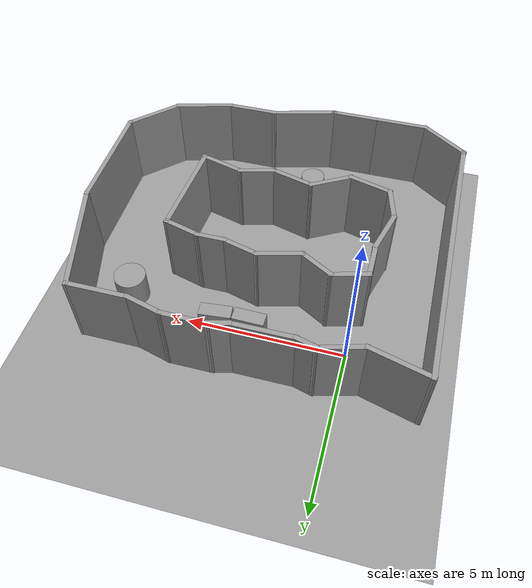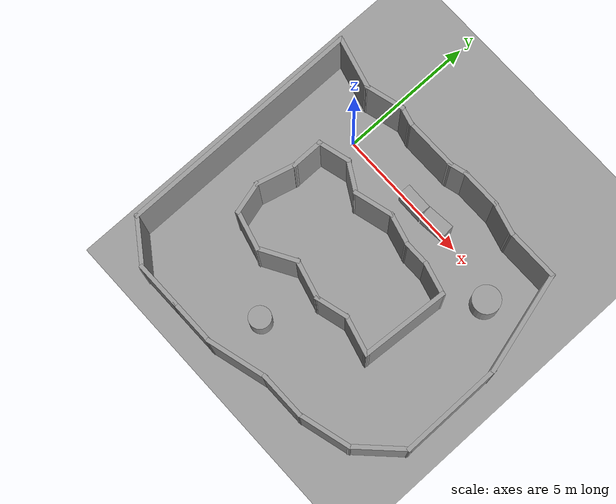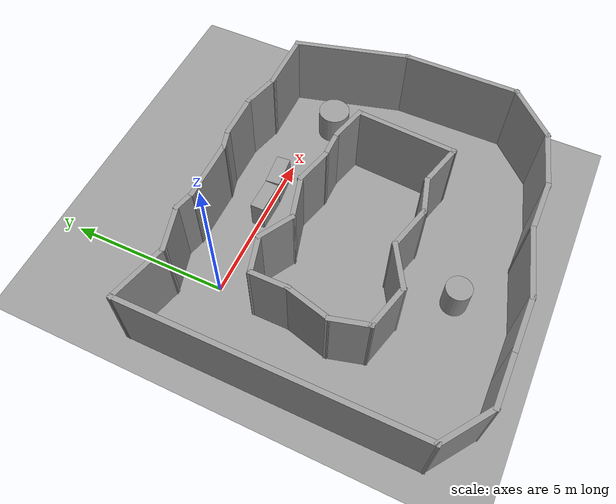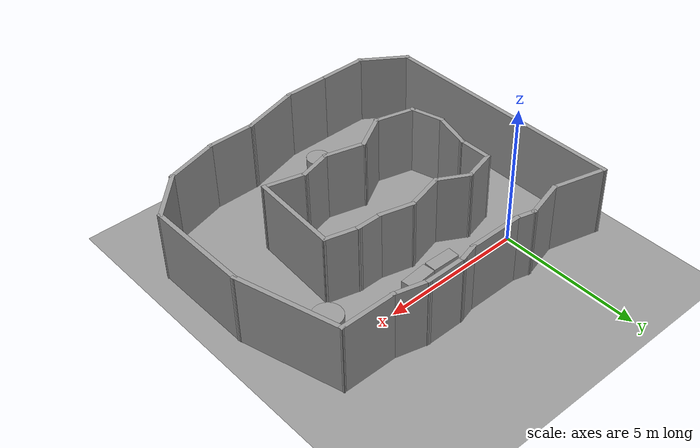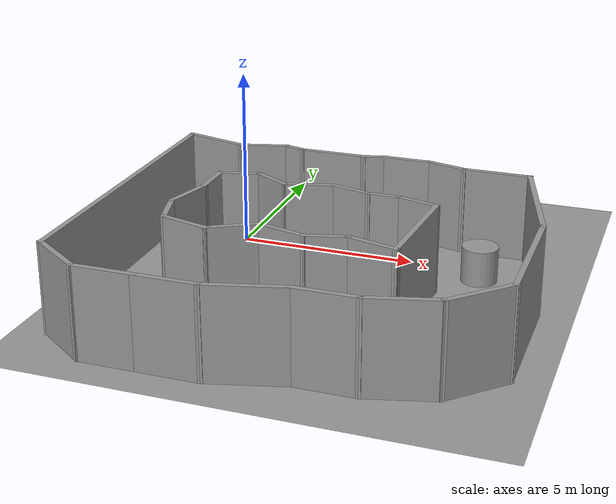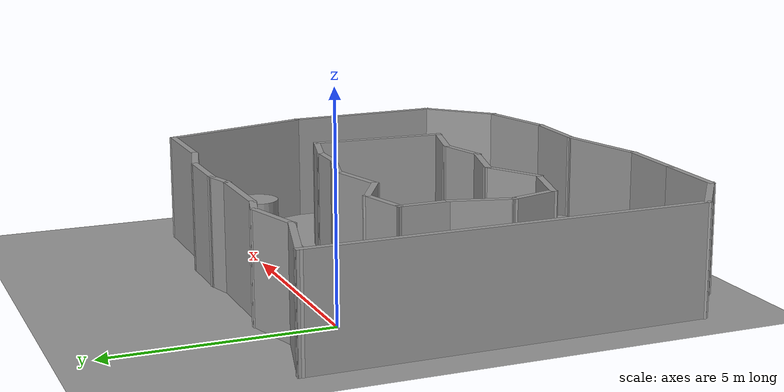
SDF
<sdf version="1.6">
 <world name="default">
  <light name="sun" type="directional">
   <pose>0 0 10 0 -0 0</pose>
   <diffuse>0.8 0.8 0.8 1</diffuse>
   <specular>0.2 0.2 0.2 1</specular>
   <attenuation>
    <range>1000</range>
    <constant>0.9</constant>
    <linear>0.01</linear>
    <quadratic>0.001</quadratic>
   </attenuation>
   <direction>0.5 0.1 -0.9</direction>
  </light>
  <scene><ambient>0.4 0.4 0.4 1</ambient><background>0.7 0.7 0.7 1</background><shadows>1</shadows></scene>
  <physics name="default_physics" default="0" type="ode">
   <max_step_size>0.01</max_step_size>
   <real_time_factor>1</real_time_factor>
   <real_time_update_rate>100</real_time_update_rate>
  </physics>
  <model name="ground_plane_0">
   <static>1</static>
   <link name="link">
    <collision name="collision">
     <geometry><plane><normal>0 0 1</normal><size>100 100</size></plane></geometry>
     <surface><friction><ode><mu>100</mu><mu2>50</mu2></ode></friction></surface>
    </collision>
    <visual name="visual">
     <cast_shadows>0</cast_shadows>
     <geometry><plane><normal>0 0 1</normal><size>100 100</size></plane></geometry>
     <material>
      <script><uri>file://media/materials/scripts/gazebo.material</uri><name>Gazebo/Grey</name></script>
     </material>
    </visual>
    <velocity_decay><linear>0</linear><angular>0</angular></velocity_decay>
   </link>
   <pose>0.497681 0 0 0 -0 0</pose>
  </model>
  <gravity>0 0 -9.8</gravity>
  <magnetic_field>6e-06 2.3e-05 -4.2e-05</magnetic_field>
  <atmosphere type="adiabatic"/>
  <spherical_coordinates>
   <surface_model>EARTH_WGS84</surface_model>
   <latitude_deg>0</latitude_deg>
   <longitude_deg>0</longitude_deg>
   <elevation>0</elevation>
   <heading_deg>0</heading_deg>
  </spherical_coordinates>
  <model name="unit_cylinder_0">
   <pose>7.03748 -0.539944 0.499823 -0.00025 -0.000248 0.004621</pose>
   <link name="link">
    <inertial>
     <mass>1</mass>
     <inertia><ixx>0.145833</ixx><ixy>0</ixy><ixz>0</ixz><iyy>0.145833</iyy><iyz>0</iyz><izz>0.125</izz></inertia>
    </inertial>
    <collision name="collision">
     <geometry><cylinder><radius>0.499999</radius><length>0.999999</length></cylinder></geometry>
    </collision>
    <visual name="visual">
     <geometry><cylinder><radius>0.499999</radius><length>0.999999</length></cylinder></geometry>
     <material>
      <script><name>Gazebo/Grey</name><uri>file://media/materials/scripts/gazebo.material</uri></script>
     </material>
    </visual>
   </link>
  </model>
  <model name="unit_box_0">
   <pose>2.99584 0.007988 0.499912 -0.000409 -0 -0.015439</pose>
   <link name="link">
    <inertial>
     <mass>1</mass>
     <inertia>
      <ixx>0.166667</ixx>
      <ixy>0</ixy>
      <ixz>0</ixz>
      <iyy>0.166667</iyy>
      <iyz>0</iyz>
      <izz>0.166667</izz>
     </inertia>
    </inertial>
    <collision name="collision"><geometry><box><size>1 0.430317 1</size></box></geometry></collision>
    <visual name="visual">
     <geometry><box><size>1 0.430317 1</size></box></geometry>
     <material>
      <script><name>Gazebo/Grey</name><uri>file://media/materials/scripts/gazebo.material</uri></script>
     </material>
    </visual>
   </link>
  </model>
  <model name="unit_box_0_clone">
   <pose>4.03353 0.055811 0.499123 -1.4e-05 -0 0.097294</pose>
   <link name="link">
    <inertial>
     <mass>1</mass>
     <inertia>
      <ixx>0.166667</ixx>
      <ixy>0</ixy>
      <ixz>0</ixz>
      <iyy>0.166667</iyy>
      <iyz>0</iyz>
      <izz>0.166667</izz>
     </inertia>
    </inertial>
    <collision name="collision"><geometry><box><size>1 0.441095 1</size></box></geometry></collision>
    <visual name="visual">
     <geometry><box><size>1 0.441095 1</size></box></geometry>
     <material>
      <script><name>Gazebo/Grey</name><uri>file://media/materials/scripts/gazebo.material</uri></script>
     </material>
    </visual>
   </link>
  </model>
  <model name="unit_cylinder_0_clone">
   <pose>2.49657 -6.40569 0.49912 0 -0 0.021122</pose>
   <link name="link">
    <inertial>
     <mass>1</mass>
     <inertia><ixx>0.145833</ixx><ixy>0</ixy><ixz>0</ixz><iyy>0.145833</iyy><iyz>0</iyz><izz>0.125</izz></inertia>
    </inertial>
    <collision name="collision">
     <geometry><cylinder><radius>0.397753</radius><length>0.999999</length></cylinder></geometry>
    </collision>
    <visual name="visual">
     <geometry><cylinder><radius>0.397753</radius><length>0.999999</length></cylinder></geometry>
     <material>
      <script><name>Gazebo/Grey</name><uri>file://media/materials/scripts/gazebo.material</uri></script>
     </material>
    </visual>
   </link>
  </model>
  <model name="track2">
   <pose>3.27057 -3.27877 0 0 -0 1.5745</pose>
   <link name="Wall_0">
    <collision name="Wall_0_Collision">
     <geometry><box><size>1.5 0.15 2.5</size></box></geometry>
     <pose>0 0 1.25 0 -0 0</pose>
    </collision>
    <visual name="Wall_0_Visual">
     <pose>0 0 1.25 0 -0 0</pose>
     <geometry><box><size>1.5 0.15 2.5</size></box></geometry>
     <material>
      <script><uri>file://media/materials/scripts/gazebo.material</uri><name>Gazebo/Grey</name></script>
      <ambient>1 1 1 1</ambient>
     </material>
    </visual>
    <pose>-1.37428 -1.93212 0 0 -0 1.309</pose>
   </link>
   <link name="Wall_1">
    <collision name="Wall_1_Collision">
     <geometry><box><size>1.25 0.15 2.5</size></box></geometry>
     <pose>0 0 1.25 0 -0 0</pose>
    </collision>
    <visual name="Wall_1_Visual">
     <pose>0 0 1.25 0 -0 0</pose>
     <geometry><box><size>1.25 0.15 2.5</size></box></geometry>
     <material>
      <script><uri>file://media/materials/scripts/gazebo.material</uri><name>Gazebo/Grey</name></script>
      <ambient>1 1 1 1</ambient>
     </material>
    </visual>
    <pose>-1.34193 -0.748862 0 0 -0 1.8326</pose>
   </link>
   <link name="Wall_10">
    <collision name="Wall_10_Collision">
     <geometry><box><size>1.5 0.15 2.5</size></box></geometry>
     <pose>0 0 1.25 0 -0 0</pose>
    </collision>
    <visual name="Wall_10_Visual">
     <pose>0 0 1.25 0 -0 0</pose>
     <geometry><box><size>1.5 0.15 2.5</size></box></geometry>
     <material>
      <script><uri>file://media/materials/scripts/gazebo.material</uri><name>Gazebo/Grey</name></script>
      <ambient>1 1 1 1</ambient>
     </material>
    </visual>
    <pose>1.91545 0.82768 0 0 0 -1.309</pose>
   </link>
   <link name="Wall_11">
    <collision name="Wall_11_Collision">
     <geometry><box><size>1.25 0.15 2.5</size></box></geometry>
     <pose>0 0 1.25 0 -0 0</pose>
    </collision>
    <visual name="Wall_11_Visual">
     <pose>0 0 1.25 0 -0 0</pose>
     <geometry><box><size>1.25 0.15 2.5</size></box></geometry>
     <material>
      <script><uri>file://media/materials/scripts/gazebo.material</uri><name>Gazebo/Grey</name></script>
      <ambient>1 1 1 1</ambient>
     </material>
    </visual>
    <pose>1.94781 -0.355579 0 0 0 -1.8326</pose>
   </link>
   <link name="Wall_12">
    <collision name="Wall_12_Collision">
     <geometry><box><size>1 0.15 2.5</size></box></geometry>
     <pose>0 0 1.25 0 -0 0</pose>
    </collision>
    <visual name="Wall_12_Visual">
     <pose>0 0 1.25 0 -0 0</pose>
     <geometry><box><size>1 0.15 2.5</size></box></geometry>
     <material>
      <script><uri>file://media/materials/scripts/gazebo.material</uri><name>Gazebo/Grey</name></script>
      <ambient>1 1 1 1</ambient>
     </material>
    </visual>
    <pose>1.80545 -1.31184 0 0 0 -1.5708</pose>
   </link>
   <link name="Wall_13">
    <collision name="Wall_13_Collision">
     <geometry><box><size>1.25 0.15 2.5</size></box></geometry>
     <pose>0 0 1.25 0 -0 0</pose>
    </collision>
    <visual name="Wall_13_Visual">
     <pose>0 0 1.25 0 -0 0</pose>
     <geometry><box><size>1.25 0.15 2.5</size></box></geometry>
     <material>
      <script><uri>file://media/materials/scripts/gazebo.material</uri><name>Gazebo/Grey</name></script>
      <ambient>1 1 1 1</ambient>
     </material>
    </visual>
    <pose>1.6631 -2.2681 0 0 0 -1.8326</pose>
   </link>
   <link name="Wall_14">
    <collision name="Wall_14_Collision">
     <geometry><box><size>3.22728 0.15 2.5</size></box></geometry>
     <pose>0 0 1.25 0 -0 0</pose>
    </collision>
    <visual name="Wall_14_Visual">
     <pose>0 0 1.25 0 -0 0</pose>
     <geometry><box><size>3.22728 0.15 2.5</size></box></geometry>
     <material>
      <script><uri>file://media/materials/scripts/gazebo.material</uri><name>Gazebo/Grey</name></script>
      <ambient>1 1 1 1</ambient>
     </material>
    </visual>
    <pose>-0.014116 -2.69174 0 0 -0 3.07159</pose>
   </link>
   <link name="Wall_16">
    <collision name="Wall_16_Collision">
     <geometry><box><size>9 0.15 2.5</size></box></geometry>
     <pose>0 0 1.25 0 -0 0</pose>
    </collision>
    <visual name="Wall_16_Visual">
     <pose>0 0 1.25 0 -0 0</pose>
     <geometry><box><size>9 0.15 2.5</size></box></geometry>
     <material>
      <script><uri>file://media/materials/scripts/gazebo.material</uri><name>Gazebo/Grey</name></script>
      <ambient>1 1 1 1</ambient>
     </material>
    </visual>
    <pose>0.492316 5.64792 0 0 -0 0</pose>
   </link>
   <link name="Wall_17">
    <collision name="Wall_17_Collision">
     <geometry><box><size>2 0.15 2.5</size></box></geometry>
     <pose>0 0 1.25 0 -0 0</pose>
    </collision>
    <visual name="Wall_17_Visual">
     <pose>0 0 1.25 0 -0 0</pose>
     <geometry><box><size>2 0.15 2.5</size></box></geometry>
     <material>
      <script><uri>file://media/materials/scripts/gazebo.material</uri><name>Gazebo/Grey</name></script>
      <ambient>1 1 1 1</ambient>
     </material>
    </visual>
    <pose>4.67791 4.75444 0 0 0 -1.8326</pose>
   </link>
   <link name="Wall_18">
    <collision name="Wall_18_Collision">
     <geometry><box><size>1.5 0.15 2.5</size></box></geometry>
     <pose>0 0 1.25 0 -0 0</pose>
    </collision>
    <visual name="Wall_18_Visual">
     <pose>0 0 1.25 0 -0 0</pose>
     <geometry><box><size>1.5 0.15 2.5</size></box></geometry>
     <material>
      <script><uri>file://media/materials/scripts/gazebo.material</uri><name>Gazebo/Grey</name></script>
      <ambient>1 1 1 1</ambient>
     </material>
    </visual>
    <pose>4.6132 3.20896 0 0 0 -1.309</pose>
   </link>
   <link name="Wall_19">
    <collision name="Wall_19_Collision">
     <geometry><box><size>0.75 0.15 2.5</size></box></geometry>
     <pose>0 0 1.25 0 -0 0</pose>
    </collision>
    <visual name="Wall_19_Visual">
     <pose>0 0 1.25 0 -0 0</pose>
     <geometry><box><size>0.75 0.15 2.5</size></box></geometry>
     <material>
      <script><uri>file://media/materials/scripts/gazebo.material</uri><name>Gazebo/Grey</name></script>
      <ambient>1 1 1 1</ambient>
     </material>
    </visual>
    <pose>4.71026 2.26718 0 0 0 -1.8326</pose>
   </link>
   <link name="Wall_2">
    <collision name="Wall_2_Collision">
     <geometry><box><size>1.5 0.15 2.5</size></box></geometry>
     <pose>0 0 1.25 0 -0 0</pose>
    </collision>
    <visual name="Wall_2_Visual">
     <pose>0 0 1.25 0 -0 0</pose>
     <geometry><box><size>1.5 0.15 2.5</size></box></geometry>
     <material>
      <script><uri>file://media/materials/scripts/gazebo.material</uri><name>Gazebo/Grey</name></script>
      <ambient>1 1 1 1</ambient>
     </material>
    </visual>
    <pose>-1.30958 0.434397 0 0 -0 1.309</pose>
   </link>
   <link name="Wall_20">
    <collision name="Wall_20_Collision">
     <geometry><box><size>2 0.15 2.5</size></box></geometry>
     <pose>0 0 1.25 0 -0 0</pose>
    </collision>
    <visual name="Wall_20_Visual">
     <pose>0 0 1.25 0 -0 0</pose>
     <geometry><box><size>2 0.15 2.5</size></box></geometry>
     <material>
      <script><uri>file://media/materials/scripts/gazebo.material</uri><name>Gazebo/Grey</name></script>
      <ambient>1 1 1 1</ambient>
     </material>
    </visual>
    <pose>4.63262 1.05241 0 0 0 -1.5708</pose>
   </link>
   <link name="Wall_21">
    <collision name="Wall_21_Collision">
     <geometry><box><size>0.75 0.15 2.5</size></box></geometry>
     <pose>0 0 1.25 0 -0 0</pose>
    </collision>
    <visual name="Wall_21_Visual">
     <pose>0 0 1.25 0 -0 0</pose>
     <geometry><box><size>0.75 0.15 2.5</size></box></geometry>
     <material>
      <script><uri>file://media/materials/scripts/gazebo.material</uri><name>Gazebo/Grey</name></script>
      <ambient>1 1 1 1</ambient>
     </material>
    </visual>
    <pose>4.71026 -0.162373 0 0 0 -1.309</pose>
   </link>
   <link name="Wall_22">
    <collision name="Wall_22_Collision">
     <geometry><box><size>1.5 0.15 2.5</size></box></geometry>
     <pose>0 0 1.25 0 -0 0</pose>
    </collision>
    <visual name="Wall_22_Visual">
     <pose>0 0 1.25 0 -0 0</pose>
     <geometry><box><size>1.5 0.15 2.5</size></box></geometry>
     <material>
      <script><uri>file://media/materials/scripts/gazebo.material</uri><name>Gazebo/Grey</name></script>
      <ambient>1 1 1 1</ambient>
     </material>
    </visual>
    <pose>4.78791 -1.12715 0 0 0 -1.5708</pose>
   </link>
   <link name="Wall_23">
    <collision name="Wall_23_Collision">
     <geometry><box><size>1.25 0.15 2.5</size></box></geometry>
     <pose>0 0 1.25 0 -0 0</pose>
    </collision>
    <visual name="Wall_23_Visual">
     <pose>0 0 1.25 0 -0 0</pose>
     <geometry><box><size>1.25 0.15 2.5</size></box></geometry>
     <material>
      <script><uri>file://media/materials/scripts/gazebo.material</uri><name>Gazebo/Grey</name></script>
      <ambient>1 1 1 1</ambient>
     </material>
    </visual>
    <pose>4.64556 -2.33341 0 0 0 -1.8326</pose>
   </link>
   <link name="Wall_24">
    <collision name="Wall_24_Collision">
     <geometry><box><size>2 0.15 2.5</size></box></geometry>
     <pose>0 0 1.25 0 -0 0</pose>
    </collision>
    <visual name="Wall_24_Visual">
     <pose>0 0 1.25 0 -0 0</pose>
     <geometry><box><size>2 0.15 2.5</size></box></geometry>
     <material>
      <script><uri>file://media/materials/scripts/gazebo.material</uri><name>Gazebo/Grey</name></script>
      <ambient>1 1 1 1</ambient>
     </material>
    </visual>
    <pose>4.50321 -3.78967 0 0 0 -1.5708</pose>
   </link>
   <link name="Wall_25">
    <collision name="Wall_25_Collision">
     <geometry><box><size>3.75 0.15 2.5</size></box></geometry>
     <pose>0 0 1.25 0 -0 0</pose>
    </collision>
    <visual name="Wall_25_Visual">
     <pose>0 0 1.25 0 -0 0</pose>
     <geometry><box><size>3.75 0.15 2.5</size></box></geometry>
     <material>
      <script><uri>file://media/materials/scripts/gazebo.material</uri><name>Gazebo/Grey</name></script>
      <ambient>1 1 1 1</ambient>
     </material>
    </visual>
    <pose>2.76454 -5.18054 0 0 0 -2.87979</pose>
   </link>
   <link name="Wall_26">
    <collision name="Wall_26_Collision">
     <geometry><box><size>3.75 0.15 2.5</size></box></geometry>
     <pose>0 0 1.25 0 -0 0</pose>
    </collision>
    <visual name="Wall_26_Visual">
     <pose>0 0 1.25 0 -0 0</pose>
     <geometry><box><size>3.75 0.15 2.5</size></box></geometry>
     <material>
      <script><uri>file://media/materials/scripts/gazebo.material</uri><name>Gazebo/Grey</name></script>
      <ambient>1 1 1 1</ambient>
     </material>
    </visual>
    <pose>-0.774127 -5.64642 0 0 -0 3.14159</pose>
   </link>
   <link name="Wall_27">
    <collision name="Wall_27_Collision">
     <geometry><box><size>2 0.15 2.5</size></box></geometry>
     <pose>0 0 1.25 0 -0 0</pose>
    </collision>
    <visual name="Wall_27_Visual">
     <pose>0 0 1.25 0 -0 0</pose>
     <geometry><box><size>2 0.15 2.5</size></box></geometry>
     <material>
      <script><uri>file://media/materials/scripts/gazebo.material</uri><name>Gazebo/Grey</name></script>
      <ambient>1 1 1 1</ambient>
     </material>
    </visual>
    <pose>-3.2282 -4.99234 0 0 -0 2.35619</pose>
   </link>
   <link name="Wall_28">
    <collision name="Wall_28_Collision">
     <geometry><box><size>2 0.15 2.5</size></box></geometry>
     <pose>0 0 1.25 0 -0 0</pose>
    </collision>
    <visual name="Wall_28_Visual">
     <pose>0 0 1.25 0 -0 0</pose>
     <geometry><box><size>2 0.15 2.5</size></box></geometry>
     <material>
      <script><uri>file://media/materials/scripts/gazebo.material</uri><name>Gazebo/Grey</name></script>
      <ambient>1 1 1 1</ambient>
     </material>
    </visual>
    <pose>-4.12168 -3.44479 0 0 -0 1.8326</pose>
   </link>
   <link name="Wall_29">
    <collision name="Wall_29_Collision">
     <geometry><box><size>1.75 0.15 2.5</size></box></geometry>
     <pose>0 0 1.25 0 -0 0</pose>
    </collision>
    <visual name="Wall_29_Visual">
     <pose>0 0 1.25 0 -0 0</pose>
     <geometry><box><size>1.75 0.15 2.5</size></box></geometry>
     <material>
      <script><uri>file://media/materials/scripts/gazebo.material</uri><name>Gazebo/Grey</name></script>
      <ambient>1 1 1 1</ambient>
     </material>
    </visual>
    <pose>-4.36109 -1.75131 0 0 -0 1.5708</pose>
   </link>
   <link name="Wall_3">
    <collision name="Wall_3_Collision">
     <geometry><box><size>1.5 0.15 2.5</size></box></geometry>
     <pose>0 0 1.25 0 -0 0</pose>
    </collision>
    <visual name="Wall_3_Visual">
     <pose>0 0 1.25 0 -0 0</pose>
     <geometry><box><size>1.5 0.15 2.5</size></box></geometry>
     <material>
      <script><uri>file://media/materials/scripts/gazebo.material</uri><name>Gazebo/Grey</name></script>
      <ambient>1 1 1 1</ambient>
     </material>
    </visual>
    <pose>-1.47237 1.67096 0 0 -0 2.0944</pose>
   </link>
   <link name="Wall_30">
    <collision name="Wall_30_Collision">
     <geometry><box><size>2.25 0.15 2.5</size></box></geometry>
     <pose>0 0 1.25 0 -0 0</pose>
    </collision>
    <visual name="Wall_30_Visual">
     <pose>0 0 1.25 0 -0 0</pose>
     <geometry><box><size>2.25 0.15 2.5</size></box></geometry>
     <material>
      <script><uri>file://media/materials/scripts/gazebo.material</uri><name>Gazebo/Grey</name></script>
      <ambient>1 1 1 1</ambient>
     </material>
    </visual>
    <pose>-4.63285 0.062915 0 0 -0 1.8326</pose>
   </link>
   <link name="Wall_31">
    <collision name="Wall_31_Collision">
     <geometry><box><size>1.75 0.15 2.5</size></box></geometry>
     <pose>0 0 1.25 0 -0 0</pose>
    </collision>
    <visual name="Wall_31_Visual">
     <pose>0 0 1.25 0 -0 0</pose>
     <geometry><box><size>1.75 0.15 2.5</size></box></geometry>
     <material>
      <script><uri>file://media/materials/scripts/gazebo.material</uri><name>Gazebo/Grey</name></script>
      <ambient>1 1 1 1</ambient>
     </material>
    </visual>
    <pose>-4.90461 1.87714 0 0 -0 1.5708</pose>
   </link>
   <link name="Wall_32">
    <collision name="Wall_32_Collision">
     <geometry><box><size>1.75 0.15 2.5</size></box></geometry>
     <pose>0 0 1.25 0 -0 0</pose>
    </collision>
    <visual name="Wall_32_Visual">
     <pose>0 0 1.25 0 -0 0</pose>
     <geometry><box><size>1.75 0.15 2.5</size></box></geometry>
     <material>
      <script><uri>file://media/materials/scripts/gazebo.material</uri><name>Gazebo/Grey</name></script>
      <ambient>1 1 1 1</ambient>
     </material>
    </visual>
    <pose>-4.90461 3.47714 0 0 -0 1.5708</pose>
   </link>
   <link name="Wall_33">
    <collision name="Wall_33_Collision">
     <geometry><box><size>1.83038 0.15 2.5</size></box></geometry>
     <pose>0 0 1.25 0 -0 0</pose>
    </collision>
    <visual name="Wall_33_Visual">
     <pose>0 0 1.25 0 -0 0</pose>
     <geometry><box><size>1.83038 0.15 2.5</size></box></geometry>
     <material>
      <script><uri>file://media/materials/scripts/gazebo.material</uri><name>Gazebo/Grey</name></script>
      <ambient>1 1 1 1</ambient>
     </material>
    </visual>
    <pose>-4.41865 4.96253 0 0 -0 0.954037</pose>
   </link>
   <link name="Wall_4">
    <collision name="Wall_4_Collision">
     <geometry><box><size>1.5 0.15 2.5</size></box></geometry>
     <pose>0 0 1.25 0 -0 0</pose>
    </collision>
    <visual name="Wall_4_Visual">
     <pose>0 0 1.25 0 -0 0</pose>
     <geometry><box><size>1.5 0.15 2.5</size></box></geometry>
     <material>
      <script><uri>file://media/materials/scripts/gazebo.material</uri><name>Gazebo/Grey</name></script>
      <ambient>1 1 1 1</ambient>
     </material>
    </visual>
    <pose>-1.63517 2.90753 0 0 -0 1.309</pose>
   </link>
   <link name="Wall_5">
    <collision name="Wall_5_Collision">
     <geometry><box><size>1.25 0.15 2.5</size></box></geometry>
     <pose>0 0 1.25 0 -0 0</pose>
    </collision>
    <visual name="Wall_5_Visual">
     <pose>0 0 1.25 0 -0 0</pose>
     <geometry><box><size>1.25 0.15 2.5</size></box></geometry>
     <material>
      <script><uri>file://media/materials/scripts/gazebo.material</uri><name>Gazebo/Grey</name></script>
      <ambient>1 1 1 1</ambient>
     </material>
    </visual>
    <pose>-0.92921 3.70188 0 0 -0 0.261799</pose>
   </link>
   <link name="Wall_6">
    <collision name="Wall_6_Collision">
     <geometry><box><size>1.5 0.15 2.5</size></box></geometry>
     <pose>0 0 1.25 0 -0 0</pose>
    </collision>
    <visual name="Wall_6_Visual">
     <pose>0 0 1.25 0 -0 0</pose>
     <geometry><box><size>1.5 0.15 2.5</size></box></geometry>
     <material>
      <script><uri>file://media/materials/scripts/gazebo.material</uri><name>Gazebo/Grey</name></script>
      <ambient>1 1 1 1</ambient>
     </material>
    </visual>
    <pose>0.254049 3.66953 0 0 0 -0.261799</pose>
   </link>
   <link name="Wall_7">
    <collision name="Wall_7_Collision">
     <geometry><box><size>1.25 0.15 2.5</size></box></geometry>
     <pose>0 0 1.25 0 -0 0</pose>
    </collision>
    <visual name="Wall_7_Visual">
     <pose>0 0 1.25 0 -0 0</pose>
     <geometry><box><size>1.25 0.15 2.5</size></box></geometry>
     <material>
      <script><uri>file://media/materials/scripts/gazebo.material</uri><name>Gazebo/Grey</name></script>
      <ambient>1 1 1 1</ambient>
     </material>
    </visual>
    <pose>1.45605 3.49483 0 0 -0 0</pose>
   </link>
   <link name="Wall_8">
    <collision name="Wall_8_Collision">
     <geometry><box><size>1.25 0.15 2.5</size></box></geometry>
     <pose>0 0 1.25 0 -0 0</pose>
    </collision>
    <visual name="Wall_8_Visual">
     <pose>0 0 1.25 0 -0 0</pose>
     <geometry><box><size>1.25 0.15 2.5</size></box></geometry>
     <material>
      <script><uri>file://media/materials/scripts/gazebo.material</uri><name>Gazebo/Grey</name></script>
      <ambient>1 1 1 1</ambient>
     </material>
    </visual>
    <pose>2.1484 2.96357 0 0 0 -1.309</pose>
   </link>
   <link name="Wall_9">
    <collision name="Wall_9_Collision">
     <geometry><box><size>1.25 0.15 2.5</size></box></geometry>
     <pose>0 0 1.25 0 -0 0</pose>
    </collision>
    <visual name="Wall_9_Visual">
     <pose>0 0 1.25 0 -0 0</pose>
     <geometry><box><size>1.25 0.15 2.5</size></box></geometry>
     <material>
      <script><uri>file://media/materials/scripts/gazebo.material</uri><name>Gazebo/Grey</name></script>
      <ambient>1 1 1 1</ambient>
     </material>
    </visual>
    <pose>2.01575 1.95599 0 0 0 -2.0944</pose>
   </link>
   <static>1</static>
  </model>
 </world>
</sdf>
